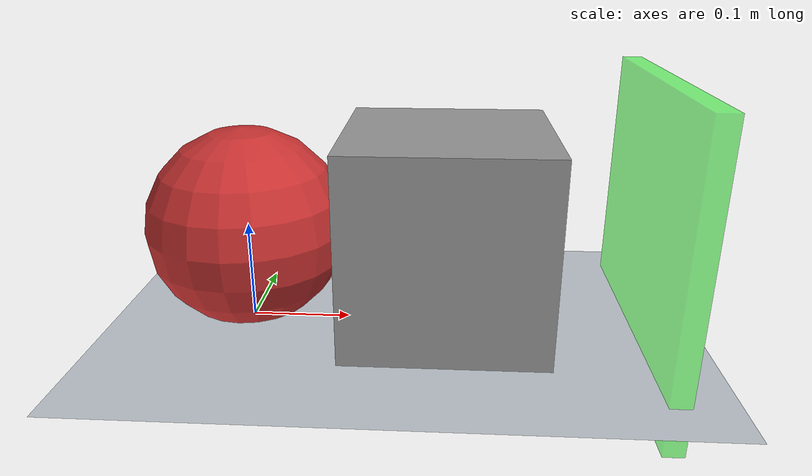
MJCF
<mujoco model="1D_Pushing">
    <option gravity="0 0 -9.81" iterations="1" timestep="0.002" impratio="100"/>

    <statistic center="0.15 0 0.1" extent="0.5"/>

    <visual>
        <headlight diffuse="0.6 0.6 0.6" ambient="0.3 0.3 0.3" specular="0 0 0"/>
        <rgba haze="0.15 0.25 0.35 1"/>
        <global azimuth="0" elevation="-20"/>
    </visual>

    <asset>
        <texture type="skybox" builtin="gradient" rgb1="0.3 0.5 0.7" rgb2="0 0 0" width="512" height="3072"/>
        <texture type="2d" name="groundplane" builtin="checker" mark="edge" rgb1="0.2 0.3 0.4" rgb2="0.1 0.2 0.3"
            markrgb="0.8 0.8 0.8" width="300" height="300"/>
        <material name="groundplane" texture="groundplane" texuniform="true" texrepeat="5 5" reflectance="0.2"/>
    </asset>

    <worldbody>
        <camera name="track" pos="0.15 -0.8 0.8" xyaxes="1 0 0 0 0.707 0.707" fovy="40"/>
        <camera name="side_view" pos="0.15 -0.8 0.8" xyaxes="1 0 0 0 0.707 0.707" fovy="40"/>

        <light pos="0 0 1.5" dir="0 0 -1" directional="true"/>
        <geom name="floor" size="0 0 0.05" type="plane" material="groundplane" friction="1 0.1 0.1"/>

        <body name="ball" pos="0.0 0 0.1">
            <joint name="ball_x" type="slide" axis="1 0 0" damping="10"/>
            <geom name="ball_geom" type="sphere" size="0.1" mass="1.0" rgba="0.8 0.2 0.2 1" solref="0.02 1" solimp="0.015 1 0.031 0.5 2"/>
        </body>

        <body name="box" pos="0.20 0 0.1">
            <joint name="box_x" type="slide" axis="1 0 0" damping="10"/>
            <geom name="box_geom" type="box" size="0.1 0.1 0.1" mass="1.0" rgba="0.6 0.6 0.6 1" solref="0.02 1" solimp="0.015 1 0.031 0.5 2"/>
        </body>

        <geom name="target" type="box" size="0.01 0.15 0.15" pos="0.4 0 0.1" rgba="0 1 0 0.5" contype="0" conaffinity="0"/>
    </worldbody>

    <actuator>
        <position name="ball_position" joint="ball_x" kp="10" ctrlrange="-1 1"/>
    </actuator>

    </mujoco>
